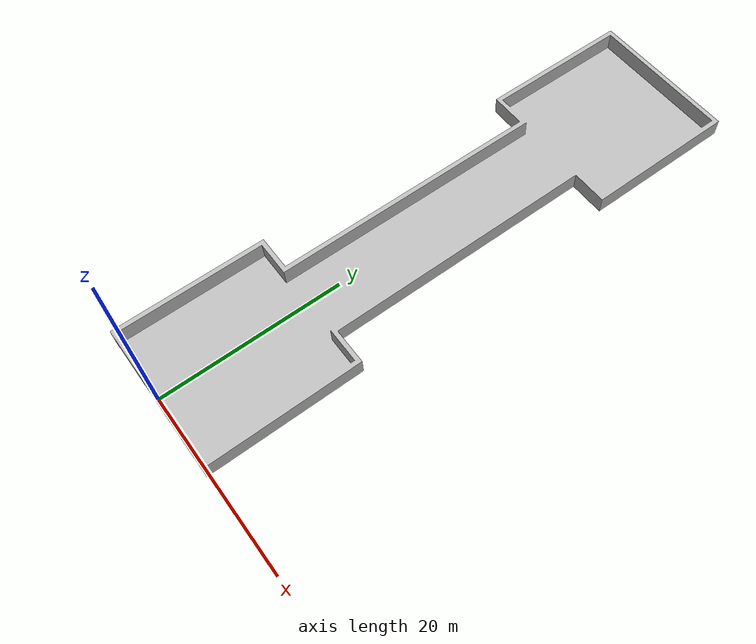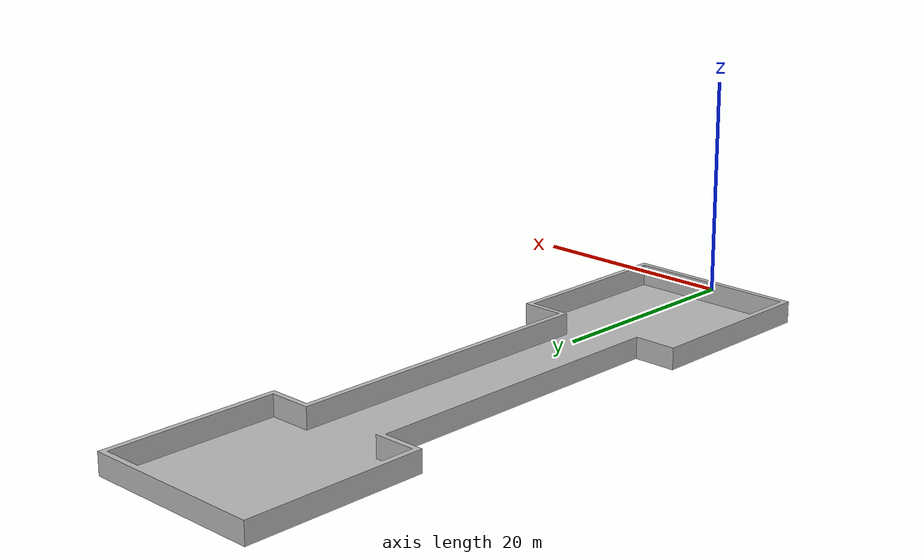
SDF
<?xml version="1.0" ?>
<sdf version="1.7">
  <model name="arena_rooms1">
    <static>true</static>
    <link name="floor_1">
      <visual name="visual">
        <pose>0 0 -0.25 0 0 0</pose>
        <geometry>
          <mesh>
            <uri>model://arena_rooms1/meshes/arena_rooms1.obj</uri>
          </mesh>
        </geometry>
      </visual>
      <collision name="collision">
        <pose>0 0 -0.25 0 0 0</pose>
        <geometry>
          <mesh>
            <uri>model://arena_rooms1/meshes/arena_rooms1.obj</uri>
          </mesh>
        </geometry>
      </collision>
    </link>
  </model>
</sdf>
